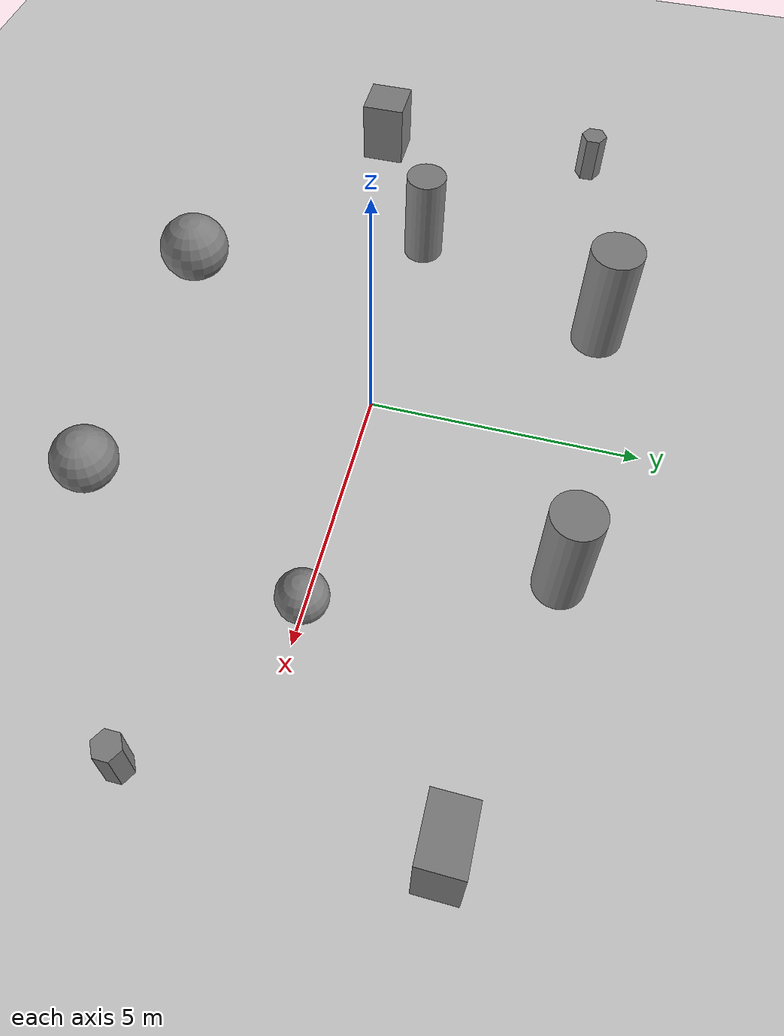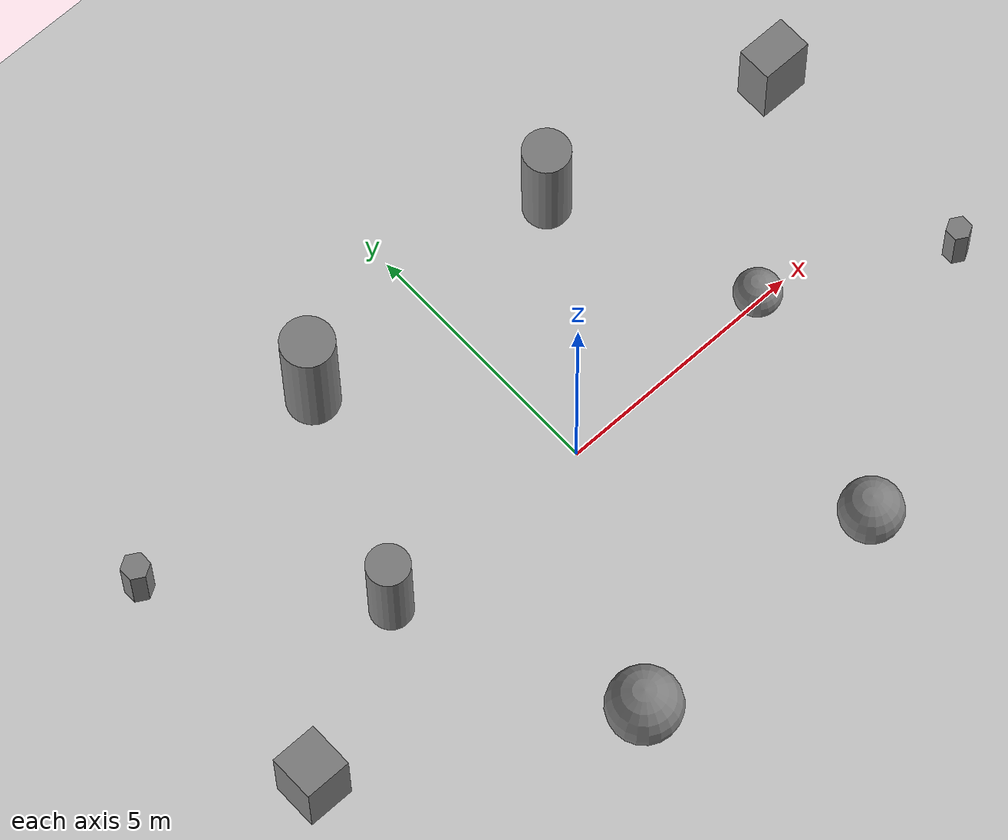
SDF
<?xml version="1.0"?>
<sdf version="1.6">
  <world name="ugv4_figure_eight_obstacles">
    <physics name="ode" type="ode">
      <max_step_size>0.001</max_step_size>
      <real_time_update_rate>1000</real_time_update_rate>
    </physics>
    <include>
      <uri>model://sun</uri>
    </include>
    <include>
      <uri>model://ground_plane</uri>
    </include>
    <model name="xgc2_obstacle_w_post_a">
      <static>true</static>
      <pose relative_to="world">2.885349 3.940664 1.1 0.0 0.0 0.0</pose>
      <link name="body">
        <collision name="collision">
          <geometry>
            <cylinder>
              <radius>0.45</radius>
              <length>2.2</length>
            </cylinder>
          </geometry>
        </collision>
        <visual name="visual">
          <geometry>
            <cylinder>
              <radius>0.45</radius>
              <length>2.2</length>
            </cylinder>
          </geometry>
          <material>
            <ambient>0.5 0.5 0.5 1</ambient>
            <diffuse>0.5 0.5 0.5 1</diffuse>
          </material>
        </visual>
      </link>
    </model>
    <model name="xgc2_obstacle_w_hex_c">
      <static>true</static>
      <pose relative_to="world">7.539486 -1.75736 0.8 0.0 0.0 0.0</pose>
      <link name="body">
        <collision name="collision">
          <geometry>
            <mesh>
              <uri>model://xgc2_convex_ugv_hexagon_1/meshes/ugv_hexagon_1.obj</uri>
              <scale>0.9 0.9 1.6</scale>
            </mesh>
          </geometry>
        </collision>
        <visual name="visual">
          <geometry>
            <mesh>
              <uri>model://xgc2_convex_ugv_hexagon_1/meshes/ugv_hexagon_1.obj</uri>
              <scale>0.9 0.9 1.6</scale>
            </mesh>
          </geometry>
          <material>
            <ambient>0.5 0.5 0.5 1</ambient>
            <diffuse>0.5 0.5 0.5 1</diffuse>
          </material>
        </visual>
      </link>
    </model>
    <model name="xgc2_obstacle_w_post_e">
      <static>true</static>
      <pose relative_to="world">-2.717212 3.918375 1.2 0.0 0.0 0.0</pose>
      <link name="body">
        <collision name="collision">
          <geometry>
            <cylinder>
              <radius>0.5</radius>
              <length>2.4</length>
            </cylinder>
          </geometry>
        </collision>
        <visual name="visual">
          <geometry>
            <cylinder>
              <radius>0.5</radius>
              <length>2.4</length>
            </cylinder>
          </geometry>
          <material>
            <ambient>0.5 0.5 0.5 1</ambient>
            <diffuse>0.5 0.5 0.5 1</diffuse>
          </material>
        </visual>
      </link>
    </model>
    <model name="xgc2_obstacle_w_slab_g">
      <static>true</static>
      <pose relative_to="world">-7.529599 -1.583767 0.7 0.0 0.0 0.0</pose>
      <link name="body">
        <collision name="collision">
          <geometry>
            <box>
              <size>0.9 0.9 1.4</size>
            </box>
          </geometry>
        </collision>
        <visual name="visual">
          <geometry>
            <box>
              <size>0.9 0.9 1.4</size>
            </box>
          </geometry>
          <material>
            <ambient>0.5 0.5 0.5 1</ambient>
            <diffuse>0.5 0.5 0.5 1</diffuse>
          </material>
        </visual>
      </link>
    </model>
    <model name="xgc2_obstacle_w_tip_r">
      <static>true</static>
      <pose relative_to="world">4.349997 -0.005236 0.45 0.0 0.0 0.0</pose>
      <link name="body">
        <collision name="collision">
          <geometry>
            <sphere>
              <radius>0.45</radius>
            </sphere>
          </geometry>
        </collision>
        <visual name="visual">
          <geometry>
            <sphere>
              <radius>0.45</radius>
            </sphere>
          </geometry>
          <material>
            <ambient>0.5 0.5 0.5 1</ambient>
            <diffuse>0.5 0.5 0.5 1</diffuse>
          </material>
        </visual>
      </link>
    </model>
    <model name="xgc2_obstacle_w_tip_l">
      <static>true</static>
      <pose relative_to="world">-4.349988 0.010392 1.0 0.0 0.0 0.0</pose>
      <link name="body">
        <collision name="collision">
          <geometry>
            <cylinder>
              <radius>0.4</radius>
              <length>2.0</length>
            </cylinder>
          </geometry>
        </collision>
        <visual name="visual">
          <geometry>
            <cylinder>
              <radius>0.4</radius>
              <length>2.0</length>
            </cylinder>
          </geometry>
          <material>
            <ambient>0.5 0.5 0.5 1</ambient>
            <diffuse>0.5 0.5 0.5 1</diffuse>
          </material>
        </visual>
      </link>
    </model>
    <model name="xgc2_obstacle_w_slab_b">
      <static>true</static>
      <pose relative_to="world">7.521842 2.974605 0.75 0.0 0.0 0.0</pose>
      <link name="body">
        <collision name="collision">
          <geometry>
            <box>
              <size>1.0 0.7 1.5</size>
            </box>
          </geometry>
        </collision>
        <visual name="visual">
          <geometry>
            <box>
              <size>1.0 0.7 1.5</size>
            </box>
          </geometry>
          <material>
            <ambient>0.5 0.5 0.5 1</ambient>
            <diffuse>0.5 0.5 0.5 1</diffuse>
          </material>
        </visual>
      </link>
    </model>
    <model name="xgc2_obstacle_w_ball_d">
      <static>true</static>
      <pose relative_to="world">2.868321 -4.42112 0.6 0.0 0.0 0.0</pose>
      <link name="body">
        <collision name="collision">
          <geometry>
            <sphere>
              <radius>0.6</radius>
            </sphere>
          </geometry>
        </collision>
        <visual name="visual">
          <geometry>
            <sphere>
              <radius>0.6</radius>
            </sphere>
          </geometry>
          <material>
            <ambient>0.5 0.5 0.5 1</ambient>
            <diffuse>0.5 0.5 0.5 1</diffuse>
          </material>
        </visual>
      </link>
    </model>
    <model name="xgc2_obstacle_w_hex_f">
      <static>true</static>
      <pose relative_to="world">-7.391438 3.118469 0.85 0.0 0.0 0.0</pose>
      <link name="body">
        <collision name="collision">
          <geometry>
            <mesh>
              <uri>model://xgc2_convex_ugv_hexagon_1/meshes/ugv_hexagon_1.obj</uri>
              <scale>1.0 1.0 1.7</scale>
            </mesh>
          </geometry>
        </collision>
        <visual name="visual">
          <geometry>
            <mesh>
              <uri>model://xgc2_convex_ugv_hexagon_1/meshes/ugv_hexagon_1.obj</uri>
              <scale>1.0 1.0 1.7</scale>
            </mesh>
          </geometry>
          <material>
            <ambient>0.5 0.5 0.5 1</ambient>
            <diffuse>0.5 0.5 0.5 1</diffuse>
          </material>
        </visual>
      </link>
    </model>
    <model name="xgc2_obstacle_w_ball_h">
      <static>true</static>
      <pose relative_to="world">-2.515265 -4.431371 0.7 0.0 0.0 0.0</pose>
      <link name="body">
        <collision name="collision">
          <geometry>
            <sphere>
              <radius>0.7</radius>
            </sphere>
          </geometry>
        </collision>
        <visual name="visual">
          <geometry>
            <sphere>
              <radius>0.7</radius>
            </sphere>
          </geometry>
          <material>
            <ambient>0.5 0.5 0.5 1</ambient>
            <diffuse>0.5 0.5 0.5 1</diffuse>
          </material>
        </visual>
      </link>
    </model>
  </world>
</sdf>
